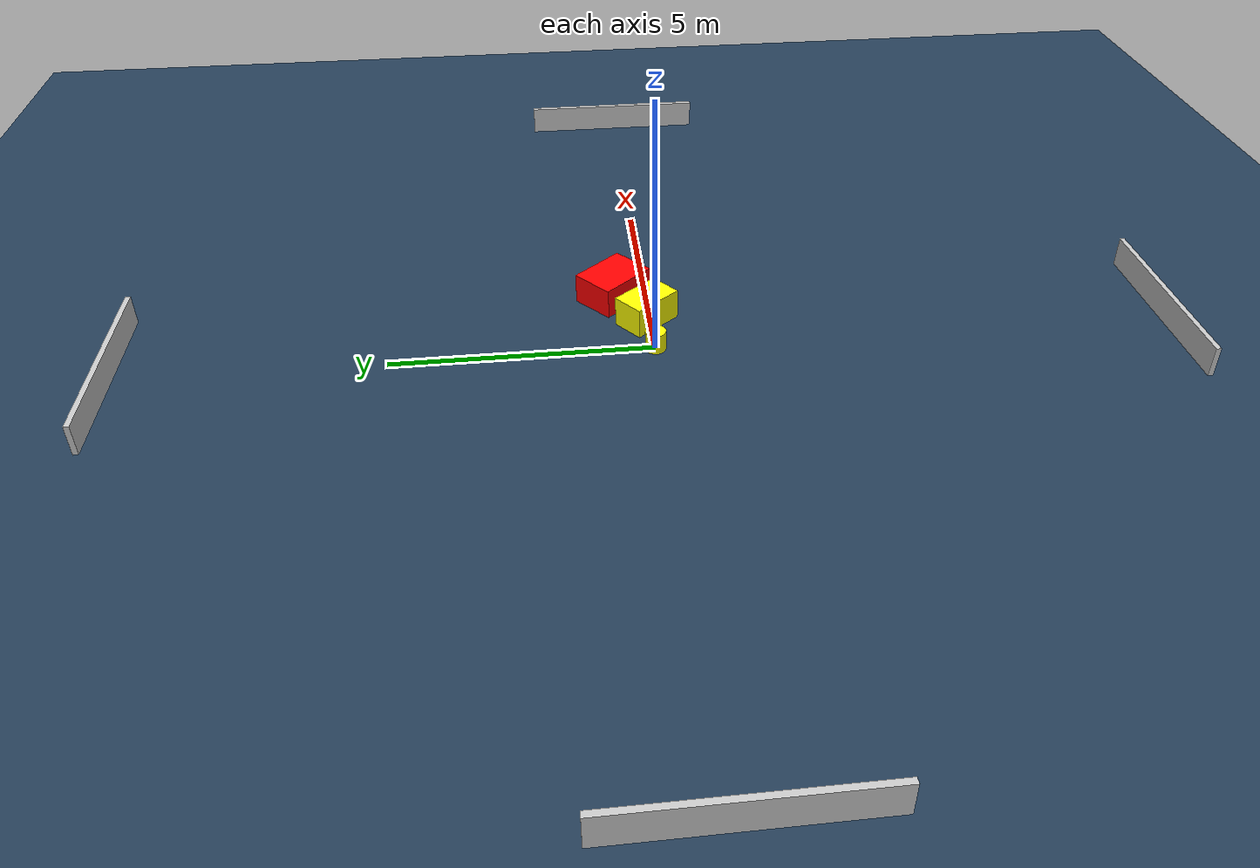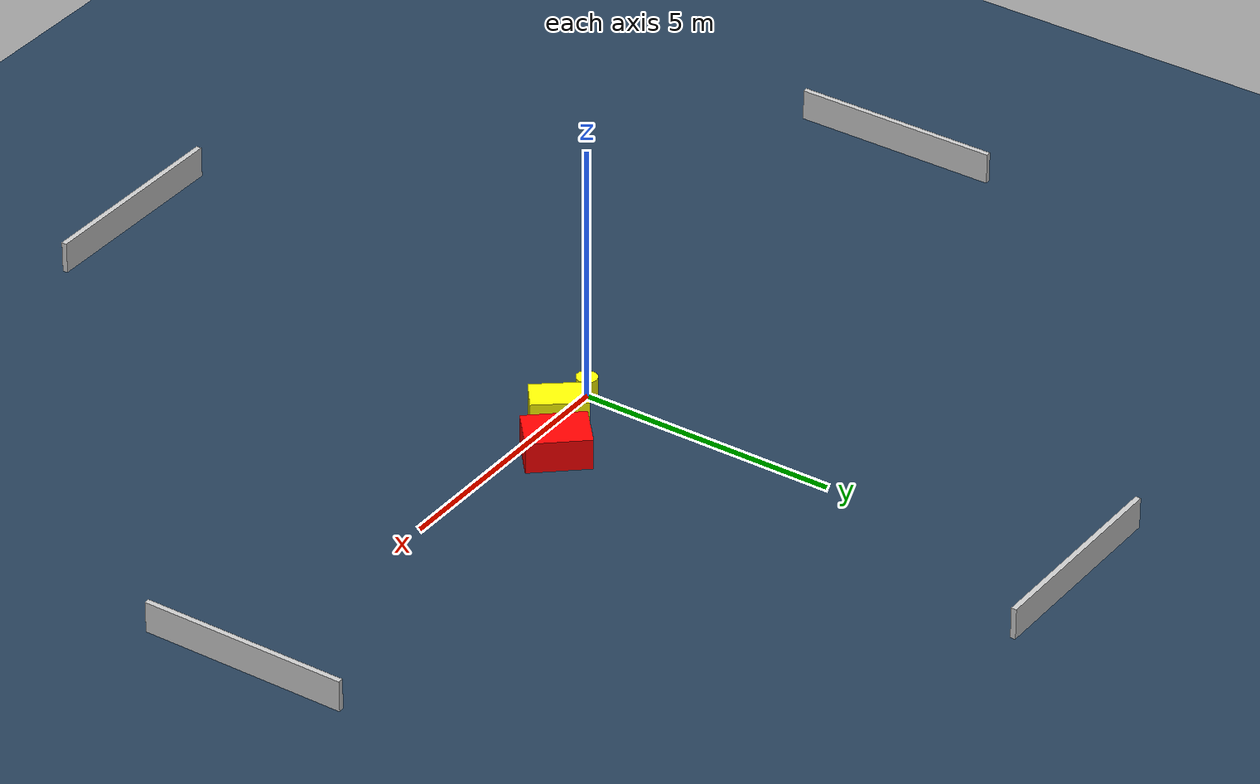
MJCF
<?xml version="1.0" ?>
<mujoco model="generated_environment">
  <option timestep="0.01" integrator="RK4" cone="elliptic"/>
  <default>
    <geom density="1"/>
  </default>
  <asset>
    <texture builtin="gradient" height="3072" name="skybox" rgb1="0.3 0.5 0.7" rgb2="0 0 0" type="skybox" width="512"/>
    <texture builtin="checker" height="300" name="groundplane" rgb1="0.2 0.3 0.4" rgb2="0.1 0.2 0.3" type="2d" width="300"/>
    <material name="groundplane" reflectance="0.2" texrepeat="5 5" texture="groundplane"/>
  </asset>
  <worldbody>
    <light dir="0 0 -1" directional="true" pos="0 0 1.5"/>
    <geom condim="3" friction="0.5 0.005 0.001" material="groundplane" name="floor" pos="0 0 0" size="0 0 0.05" type="plane"/>
    <body name="walls">
      <geom name="wall_1" condim="4" pos="-10.0 0.0 0.3" rgba="0.800000011920929 0.800000011920929 0.800000011920929 1.0" size="0.05 2.0 0.3" type="box"/>
      <geom name="wall_2" condim="4" pos="10.0 0.0 0.3" rgba="0.800000011920929 0.800000011920929 0.800000011920929 1.0" size="0.05 2.0 0.3" type="box"/>
      <geom name="wall_3" condim="4" pos="0.0 -10.0 0.3" rgba="0.800000011920929 0.800000011920929 0.800000011920929 1.0" size="2.0 0.05 0.3" type="box"/>
      <geom name="wall_4" condim="4" pos="0.0 10.0 0.3" rgba="0.800000011920929 0.800000011920929 0.800000011920929 1.0" size="2.0 0.05 0.3" type="box"/>
    </body>
    <body name="robot">
      <joint name="joint_x" type="slide" pos="0 0 0" axis="1 0 0"/>
      <joint name="joint_y" type="slide" pos="0 0 0" axis="0 1 0"/>
      <geom name="robot" type="cylinder" pos="0.0 0.0 0.2" size="0.2 0.2 0.0" mass="5.0" friction="1.0 0.005 0.0001" condim="4" rgba="1.0 1.0 0.0 1.0"/>
    </body>
    <body name="obstacle_1_movable">
      <geom name="obstacle_1_movable" condim="4" pos="0.966185298921369 0.06865857065246034 0.3" euler="0 0 218.590984964565" friction="0.0 0.005 0.001" rgba="1.0 1.0 0.0 1.0" size="0.3317967876889161 0.5200531130854531 0.3" type="box" mass="0.1"/>
      <joint type="free"/>
    </body>
    <body name="obstacle_2_static">
      <geom name="obstacle_2_static" condim="4" pos="1.866273501362991 0.6496026946469531 0.3" euler="0 0 41.22544207115769" friction="0.0 0.005 0.001" rgba="1.0 0.0 0.0 1.0" size="0.45103238441294935 0.5939603705694363 0.3" type="box"/>
    </body>
  </worldbody>
  <actuator>
    <motor name="actuator_x" joint="joint_x" gear="1" ctrlrange="-1 1"/>
    <motor name="actuator_y" joint="joint_y" gear="1" ctrlrange="-1 1"/>
  </actuator>
</mujoco>
